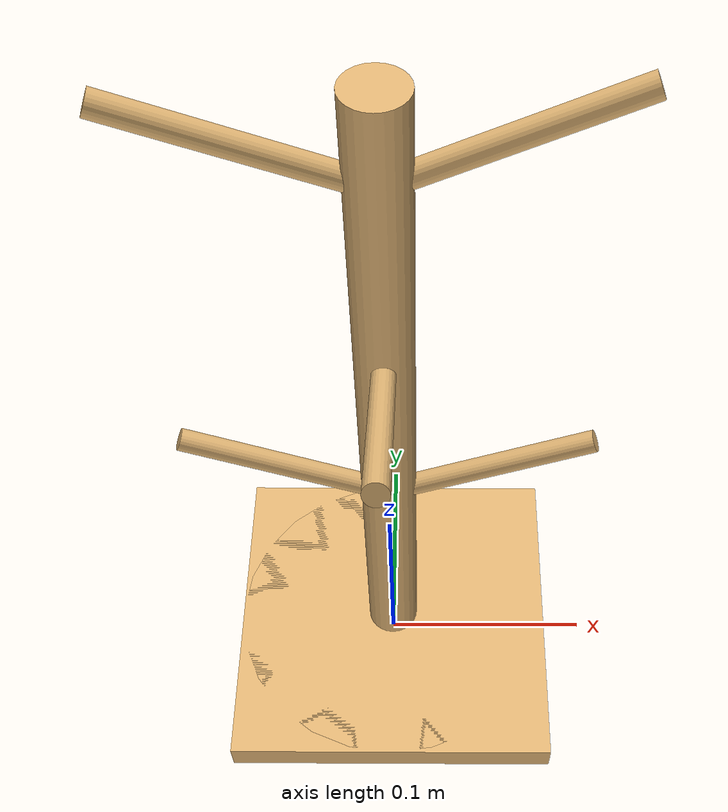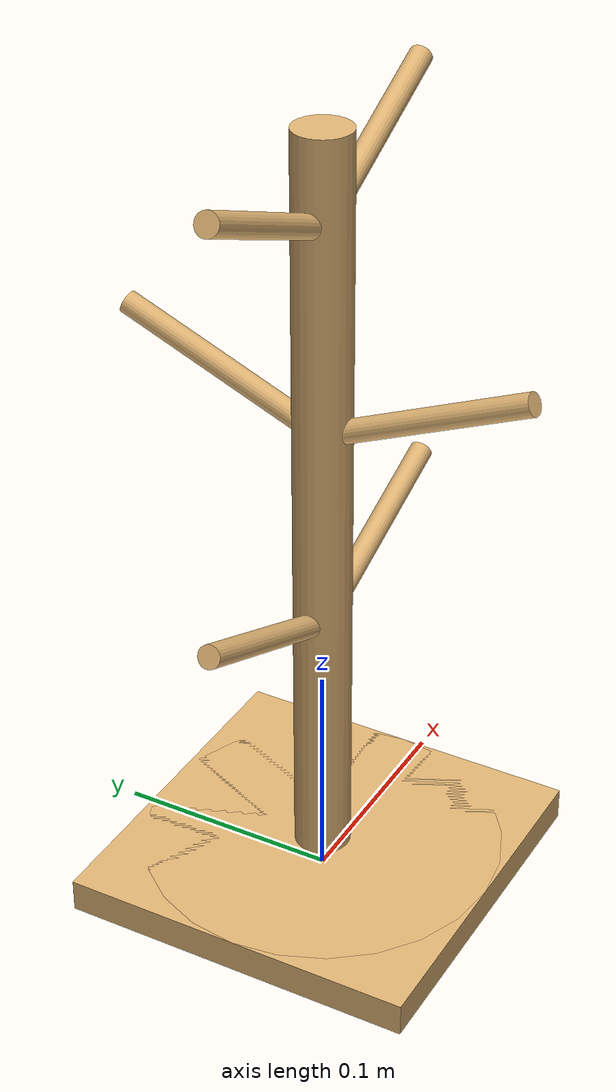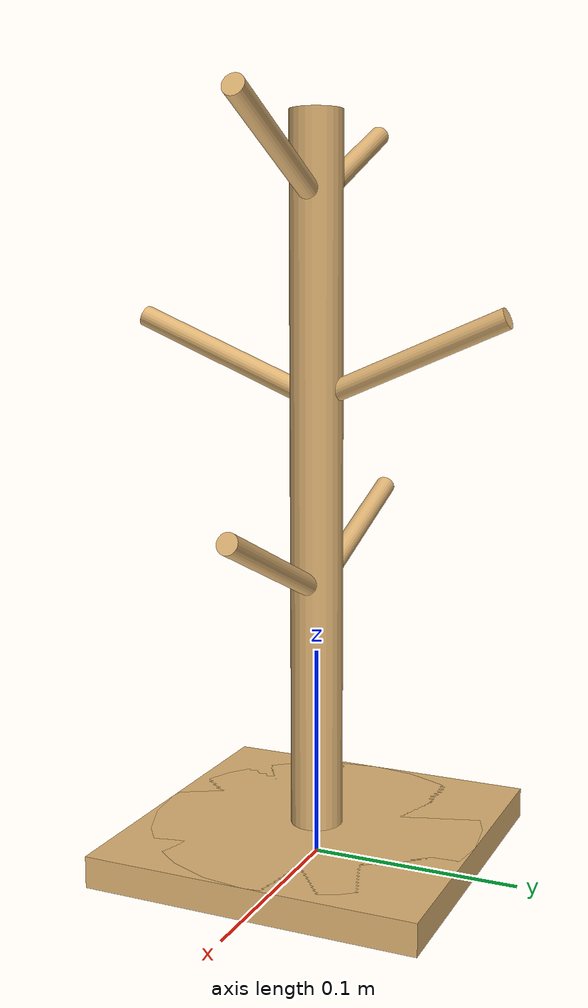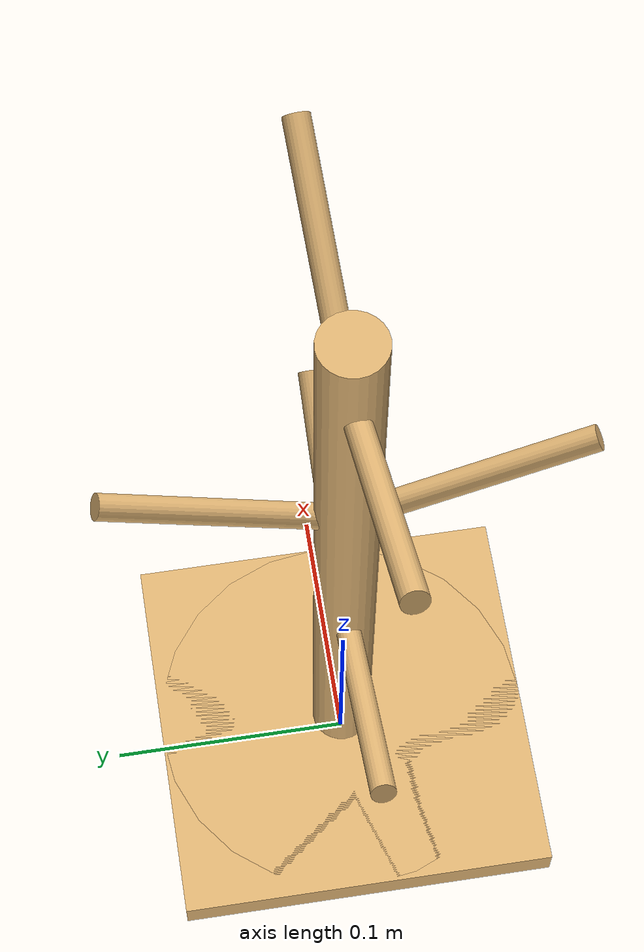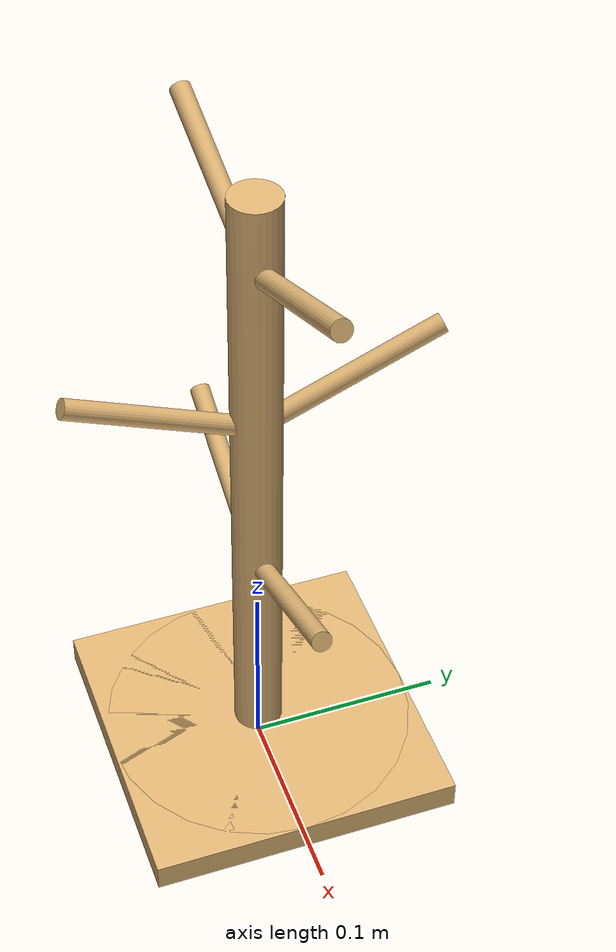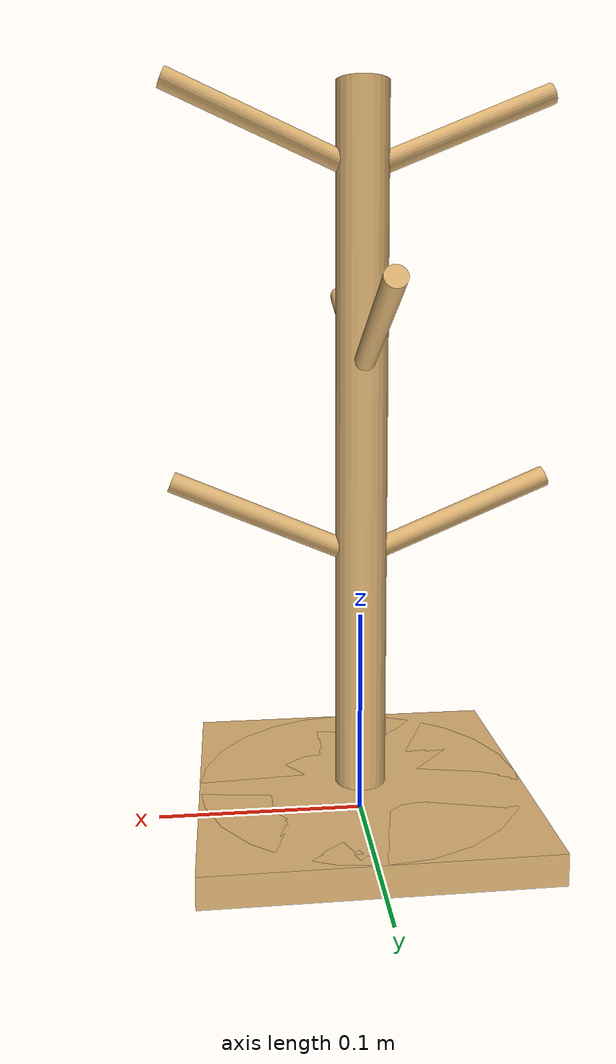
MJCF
<mujoco model="mug_hanger">
  <compiler angle="degree"/>
  <option timestep="0.001"/>

  <worldbody>
<body>
    <body name="object" pos="0 0 0">

      <!-- Base: radius 0.08 m, height 0.015 m -->
      <geom name="base" type="box" pos="0 0 0.0075" size="0.08 0.08 0.0075" density="1000" rgba="0.87 0.7 0.45 1" group="0"/>
      <geom name="base_1" type="cylinder" pos="0 0 0.0075" size="0.08 0.0075" density="1000" rgba="0.87 0.7 0.45 1" group="1" contype="0" conaffinity="0"/>

      <!-- Stem: height 0.33 m, diameter 0.025 m (radius 0.0125 m) -->
      <geom name="stem" type="cylinder" pos="0 0 0.18" size="0.0125 0.17" density="100" rgba="0.87 0.7 0.45 1" group="0"/>
      <geom name="stem_1" type="cylinder" pos="0 0 0.18" size="0.0125 0.17" density="100" rgba="0.87 0.7 0.45 1" group="1" contype="0" conaffinity="0"/>

      <!-- Lowest branch pair (base z = 0.13 m) -->
      <geom name="branch_low_right" type="cylinder" fromto="0 0 0.13  0.090216 0 0.167832" size="0.005" density="500" rgba="0.87 0.7 0.45 1" group="0"/>
      <geom name="branch_low_right_1" type="cylinder" fromto="0 0 0.13  0.090216 0 0.167832" size="0.005" density="500" rgba="0.87 0.7 0.45 1" group="1" contype="0" conaffinity="0"/>
      <geom name="branch_low_left" type="cylinder" fromto="0 0 0.13  -0.090216 0 0.167832" size="0.005" density="500" rgba="0.87 0.7 0.45 1" group="0"/>
      <geom name="branch_low_left_1" type="cylinder" fromto="0 0 0.13  -0.090216 0 0.167832" size="0.005" density="500" rgba="0.87 0.7 0.45 1" group="1" contype="0" conaffinity="0"/>

      <!-- Middle branch pair (base z = 0.22 m) -->
      <geom name="branch_mid_right" type="cylinder" fromto="0 0 0.22  0 0.090216 0.257832" size="0.005" density="500" rgba="0.87 0.7 0.45 1" group="0"/>
      <geom name="branch_mid_right_1" type="cylinder" fromto="0 0 0.22  0 0.090216 0.257832" size="0.005" density="500" rgba="0.87 0.7 0.45 1" group="1" contype="0" conaffinity="0"/>
      <geom name="branch_mid_left" type="cylinder" fromto="0 0 0.22  0 -0.090216 0.257832" size="0.005" density="500" rgba="0.87 0.7 0.45 1" group="0"/>
      <geom name="branch_mid_left_1" type="cylinder" fromto="0 0 0.22  0 -0.090216 0.257832" size="0.005" density="500" rgba="0.87 0.7 0.45 1" group="1" contype="0" conaffinity="0"/>

      <!-- Top branch pair (base z = 0.31 m) -->
      <geom name="branch_top_right" type="cylinder" fromto="0 0 0.31  0.090132 0.004716 0.347832" size="0.005" density="500" rgba="0.87 0.7 0.45 1" group="0"/>
      <geom name="branch_top_right_1" type="cylinder" fromto="0 0 0.31  0.090132 0.004716 0.347832" size="0.005" density="500" rgba="0.87 0.7 0.45 1" group="1" contype="0" conaffinity="0"/>
      <geom name="branch_top_left" type="cylinder" fromto="0 0 0.31  -0.090132 -0.004716 0.347832" size="0.005" density="500" rgba="0.87 0.7 0.45 1" group="0"/>
      <geom name="branch_top_left_1" type="cylinder" fromto="0 0 0.31  -0.090132 -0.004716 0.347832" size="0.005" density="500" rgba="0.87 0.7 0.45 1" group="1" contype="0" conaffinity="0"/>

    </body>
  </body>
  </worldbody>
</mujoco>
